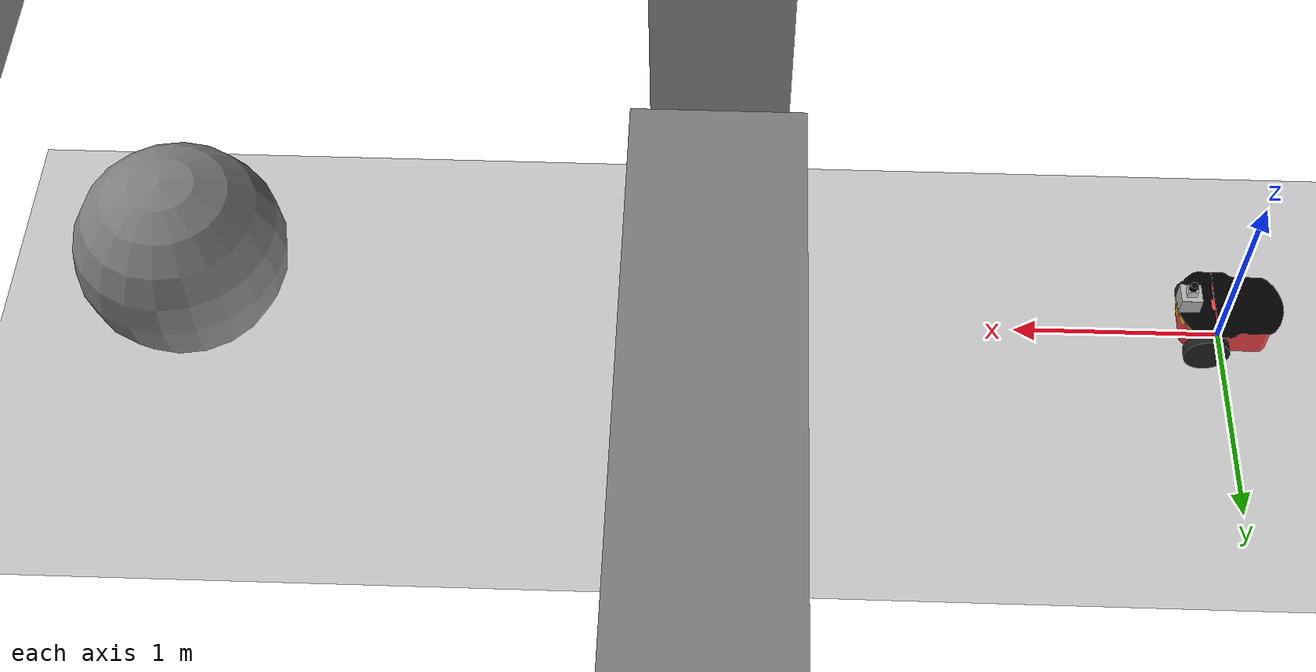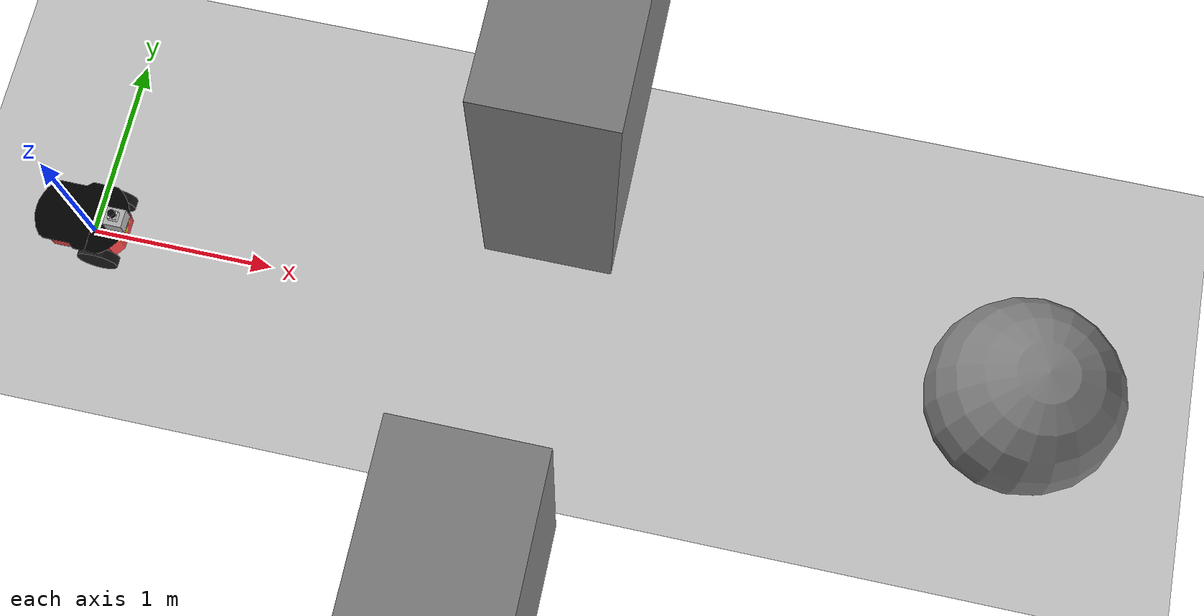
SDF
<?xml version="1.0" ?>
<sdf version="1.5">
  <world name="default">

	<physics type="ode">
		<real_time_factor>1</real_time_factor>
		<real_time_update_rate>250</real_time_update_rate>
		<max_step_size>0.0004</max_step_size>
		<ode>
			<solver>
				<iters>20</iters>
			</solver>
		</ode>
	</physics>

    <include>
      <uri>model://ground_plane</uri>
    </include>

    <include>
      <uri>model://sun</uri>
    </include>

    <include>
      <uri>model://smallworld</uri>
    </include>

    <!-- Pioneer2dx with camera and lidar -->
    <model name="pioneer2dx">

	  <pose>0 0 0 0 0 0</pose>
      <include>
        <uri>model://pioneer2dx</uri>
      </include>

      <include>
        <uri>model://hokuyo</uri>
        <pose>0.2 0 .38 0 0 0</pose>
      </include>

      <include>
        <uri>model://camera</uri>
        <pose>0.2 0 .3 0 0 0</pose>
      </include>

      <joint name="camera_joint" type="fixed">
        <parent>pioneer2dx::chassis</parent>
        <child>camera::link</child>
      </joint>

      <joint name="laser_joint" type="fixed">
        <parent>pioneer2dx::chassis</parent>
        <child>hokuyo::link</child>
      </joint>

    </model>

    <!-- Single marble -->
	<model name="marble">
	    <pose>5 0 0.5 0 0 0</pose>
		<include>
		  <static>true</static>
		  <uri>model://marble</uri>
		</include>
	</model>

	<scene>
		<grid>true</grid>
		<origin_visual>true</origin_visual>
  		<ambient>0.8 0.8 0.8 1.0</ambient>
		<shadows>true</shadows>
	</scene>

    <gui>
	  <camera name="user_camera">
	    <pose>0 0 20 0 1.57 1.57</pose>
	  </camera>
    </gui>
  </world>
</sdf>

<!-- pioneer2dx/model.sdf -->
<sdf version="1.5">
  <model name="pioneer2dx">
    <link name="chassis">
      <pose>0 0 0.16 0 0 0</pose>
      <inertial>
        <mass>5.67</mass>
        <inertia>
          <ixx>0.07</ixx>
          <iyy>0.08</iyy>
          <izz>0.10</izz>
          <ixy>0</ixy>
          <ixz>0</ixz>
          <iyz>0</iyz>
        </inertia>
      </inertial>
      <collision name="collision">
        <geometry>
          <box>
            <size>0.445 0.277 0.17</size>
          </box>
        </geometry>
      </collision>
      <collision name="castor_collision">
        <pose>-0.200 0 -0.12 0 0 0</pose>
        <geometry>
          <sphere>
            <radius>0.04</radius>
          </sphere>
        </geometry>
        <surface>
          <friction>
            <ode>
              <mu>0</mu>
              <mu2>0</mu2>
              <slip1>1.0</slip1>
              <slip2>1.0</slip2>
            </ode>
          </friction>
        </surface>
      </collision>
      <visual name="visual">
        <pose>0 0 0.04 0 0 0</pose>
        <geometry>
          <mesh>
            <uri>model://pioneer2dx/meshes/chassis.dae</uri>
          </mesh>
        </geometry>
      </visual>
      <visual name="castor_visual">
        <pose>-0.200 0 -0.12 0 0 0</pose>
        <geometry>
          <sphere>
            <radius>0.04</radius>
          </sphere>
        </geometry>
        <material>
          <script>
            <uri>file://media/materials/scripts/gazebo.material</uri>
            <name>Gazebo/FlatBlack</name>
          </script>
        </material>
      </visual>
    </link>
    <link name="right_wheel">
      <pose>0.1 -.17 0.11 0 1.5707 1.5707</pose>
      <inertial>
        <mass>1.5</mass>
        <inertia>
          <ixx>0.0051</ixx>
          <iyy>0.0051</iyy>
          <izz>0.0090</izz>
          <ixy>0</ixy>
          <ixz>0</ixz>
          <iyz>0</iyz>
        </inertia>
      </inertial>
      <collision name="collision">
        <geometry>
          <cylinder>
            <radius>0.11</radius>
            <length>0.05</length>
          </cylinder>
        </geometry>
        <surface>
          <friction>
            <ode>
              <mu>100000.0</mu>
              <mu2>100000.0</mu2>
              <slip1>0.0</slip1>
              <slip2>0.0</slip2>
            </ode>
          </friction>
        </surface>
      </collision>
      <visual name="visual">
        <geometry>
          <cylinder>
            <radius>0.11</radius>
            <length>0.05</length>
          </cylinder>
        </geometry>
        <material>
          <script>
            <uri>file://media/materials/scripts/gazebo.material</uri>
            <name>Gazebo/FlatBlack</name>
          </script>
        </material>
      </visual>
    </link>
    <link name="left_wheel">
      <pose>0.1 .17 0.11 0 1.5707 1.5707</pose>
      <inertial>
        <mass>1.5</mass>
        <inertia>
          <ixx>0.0051</ixx>
          <iyy>0.0051</iyy>
          <izz>0.0090</izz>
          <ixy>0</ixy>
          <ixz>0</ixz>
          <iyz>0</iyz>
        </inertia>
      </inertial>
      <collision name="collision">
        <geometry>
          <cylinder>
            <radius>0.11</radius>
            <length>0.05</length>
          </cylinder>
        </geometry>
        <surface>
          <friction>
            <ode>
              <mu>100000.0</mu>
              <mu2>100000.0</mu2>
              <slip1>0.0</slip1>
              <slip2>0.0</slip2>
            </ode>
          </friction>
        </surface>
      </collision>
      <visual name="visual">
        <geometry>
          <cylinder>
            <radius>0.11</radius>
            <length>0.05</length>
          </cylinder>
        </geometry>
        <material>
          <script>
            <uri>file://media/materials/scripts/gazebo.material</uri>
            <name>Gazebo/FlatBlack</name>
          </script>
        </material>
      </visual>
    </link>
    <joint type="revolute" name="left_wheel_hinge">
      <pose>0 0 -0.03 0 0 0</pose>
      <child>left_wheel</child>
      <parent>chassis</parent>
      <axis>
        <xyz>0 1 0</xyz>
        <use_parent_model_frame>true</use_parent_model_frame>
      </axis>
    </joint>
    <joint type="revolute" name="right_wheel_hinge">
      <pose>0 0 0.03 0 0 0</pose>
      <child>right_wheel</child>
      <parent>chassis</parent>
      <axis>
        <xyz>0 1 0</xyz>
        <use_parent_model_frame>true</use_parent_model_frame>
      </axis>
    </joint>
    <plugin filename="libgazebo_ros_diff_drive.so" name="diff_drive">
      <leftJoint>left_wheel_hinge</leftJoint>
      <rightJoint>right_wheel_hinge</rightJoint>
      <wheelTorque>5</wheelTorque>
      <commandTopic>/robot/control</commandTopic>
      <updateRate>100</updateRate>
      <robotBaseFrame>pioneer2dx</robotBaseFrame>
      <odometryTopic>/robot/odom</odometryTopic>
      <wheelDiameter>0.22</wheelDiameter>
      <wheelSeparation>0.34</wheelSeparation>
    </plugin>
  </model>
</sdf>

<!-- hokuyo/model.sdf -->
<sdf version="1.5">
  <model name="hokuyo">
    <pose>0 0 0.035 0 0 0</pose>
    <link name="link">
      <inertial>
        <mass>0.1</mass>
      </inertial>
      <visual name="visual">
        <geometry>
          <mesh>
            <uri>model://hokuyo/meshes/hokuyo.dae</uri>
          </mesh>
        </geometry>
      </visual>
      <collision name="collision-base">
        <pose>0 0 -0.0145 0 0 0</pose>
        <geometry>
          <box>
            <size>0.05 0.05 0.041</size>
          </box>
        </geometry>
      </collision>
      <collision name="collision-top">
        <pose>0 0 0.0205 0 0 0</pose>
        <geometry>
          <cylinder>
            <radius>0.021</radius>
            <length>0.029</length>
          </cylinder>
        </geometry>
      </collision>
      <sensor name="laser" type="ray">
        <pose>0.01 0 0.0175 0 -0 0</pose>
        <ray>
          <scan>
            <horizontal>
              <samples>200</samples>
              <resolution>1</resolution>
              <min_angle>-2.26889</min_angle>
              <max_angle>2.268899</max_angle>
            </horizontal>
          </scan>
          <range>
            <min>0.08</min>
            <max>10</max>
            <resolution>0.01</resolution>
          </range>
          <noise>
            <type>gaussian</type>
            <mean>0.0</mean>
            <stddev>0.03</stddev>
          </noise>
        </ray>
        <plugin name="laser" filename="libgazebo_ros_laser.so">
          <topicName>/robot/laser/scan</topicName>
          <frameName>hokuyo::link</frameName>
        </plugin>
        <always_on>0</always_on>
        <update_rate>10</update_rate>
        <visualize>true</visualize>man
      </sensor>
    </link>
  </model>
</sdf>

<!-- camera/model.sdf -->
<sdf version="1.5">
    <model name="camera">
        <pose>0 0 0.05 0 0 0</pose>
        <link name="link">
            <inertial>
                <mass>0.1</mass>
                <inertia>
                    <ixx>0.000166667</ixx>
                    <iyy>0.000166667</iyy>
                    <izz>0.000166667</izz>
                </inertia>
            </inertial>
            <collision name="collision">
                <geometry>
                    <box>
                        <size>0.1 0.1 0.1</size>
                    </box>
                </geometry>
            </collision>
            <visual name="visual">
                <geometry>
                    <box>
                        <size>0.1 0.1 0.1</size>
                    </box>
                </geometry>
            </visual>
            <sensor name="camera" type="camera">
                <camera name="camera">
                    <horizontal_fov>1.047</horizontal_fov>
                    <image>
                        <width>320</width>
                        <height>240</height>
                    </image>
                    <clip>
                        <near>0.1</near>
                        <far>100</far>
                    </clip>
                    <distortion>
                        <k1>-0.25</k1>
                        <k2>0.12</k2>
                        <k3>0.0</k3>
                        <p1>-0.00028</p1>
                        <p2>-0.00005</p2>
                        <center>0.5 0.5</center>
                    </distortion>
                    <noise>
                        <type>gaussian</type>
                        <mean>0.0</mean>
                        <stddev>0.02</stddev>
                    </noise>
                </camera>
                <plugin name="camera_controller" filename="libgazebo_ros_camera.so">
                    <always_on>0</always_on>
                    <update_rate>10</update_rate>
                    <imageTopicName>robot/image_raw</imageTopicName>
                    <cameraInfoTopicName>robot/camera_info</cameraInfoTopicName>
                    <frameName>camera::link</frameName>
                    <distortionK1>-0.25</distortionK1>
                    <distortionK2> 0.12</distortionK2>
                    <distortionK3> 0.0</distortionK3>
                    <distortionT1>-0.00028</distortionT1>
                    <distortionT2>-0.00005</distortionT2>
                </plugin>
                <visualize>true</visualize>
            </sensor>
        </link>
    </model>
</sdf>

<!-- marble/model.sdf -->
<sdf version="1.5">
  <model name="marble">
	<static>true</static>
    <link name="link">
      <inertial>
        <pose>0 0 0 0 0 0</pose>
        <mass>0.1</mass>
        <inertia>
          <ixx>0.01</ixx>
          <ixy>0</ixy>
          <ixz>0</ixz>
          <iyy>0.01</iyy>
          <iyz>0</iyz>
          <izz>0.01</izz>
        </inertia>
      </inertial>

      <collision name="collision">
        <pose>0 0 0 0 0 0</pose>
        <geometry>
          <sphere>
			<radius>0.5</radius>
		  </sphere>
        </geometry>
        <surface>
          <friction>
            <ode>
              <mu>1.0</mu>
              <mu2>1.0</mu2>
            </ode>
          </friction>
          <contact>
            <ode>
              <kp>10000000.0</kp>
              <kd>1.0</kd>
              <min_depth>0.001</min_depth>
              <max_vel>0.1</max_vel>
            </ode>
          </contact>
        </surface>
      </collision>

      <visual name="visual">
        <pose>0 0 0 0 0 0</pose>
        <geometry>
          <sphere>
			<radius>0.5</radius>
		  </sphere>
        </geometry>
		<transparency>0.03</transparency>
		<cast_shadows>true</cast_shadows>
		<laser_retro>true</laser_retro>
        <material>

		  <lighting>true</lighting>
		  <ambient> 0.5 0.5 0.5 1.0</ambient>
		  <diffuse> 0.5 0.5 0.5 1.0</diffuse>
		  <specular>1.0 1.0 1.0 1.0</specular>
		  <emissive>0.0 0.0 0.0 1.0</emissive>

		  <!-- OGRE texture script -->
          <script>
            <uri>model://marble/materials/scripts</uri>
            <uri>model://marble/materials/textures</uri>
            <name>Marble</name>
          </script>
        </material>
      </visual>

	  <!-- Contact sensor to detect collision with robot -->
		<sensor name='marble_contact' type='contact'>
		  <plugin name="contact_plugin" filename="libMarbleContactPlugin.so"/>
		  <contact>
			<collision>collision</collision>
		  </contact>
		</sensor>
    </link>
  </model>
</sdf>

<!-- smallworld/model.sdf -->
<sdf version="1.5">
      <model name="smallworld">
		<static>true</static>
    	<link name="link">
        	<pose>0 0 0 0 0 0</pose>

        	<collision name="collision">
          		<geometry>
		      		<mesh>
		      			<uri>model://smallworld/meshes/floor_plan.stl</uri>
		      		</mesh>
          		</geometry>
    		</collision>

			<visual name="visual">
          		<material>

				  <lighting>true</lighting>

				  <ambient>0.4 0.4 0.4 1.0</ambient>
				  <diffuse>0.5 0.5 0.5 1.0</diffuse>
				  <specular>0.5 0.5 0.5 1.0</specular>
				  <emissive>0.0 0.0 0.0 1.0</emissive>

          		</material>

          		<geometry>

          			<mesh>
		      			<uri>model://smallworld/meshes/floor_plan.stl</uri>
          			</mesh>
          		</geometry>
				<cast_shadows>true</cast_shadows>
				<laser_retro>true</laser_retro>

         	</visual>
        </link>
    </model>
</sdf>
